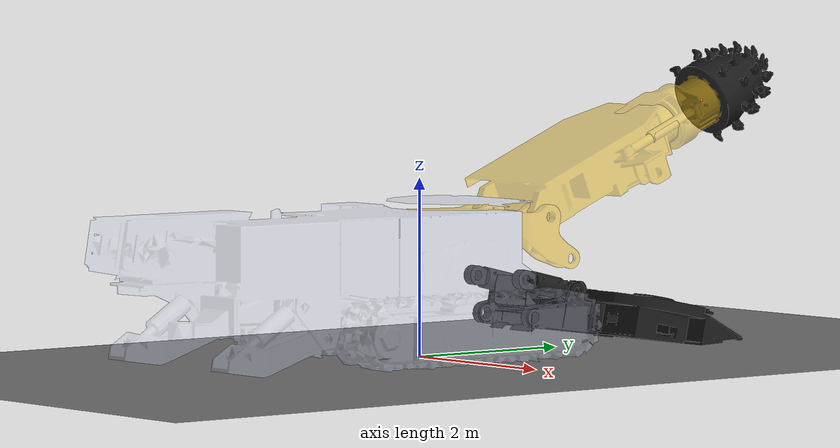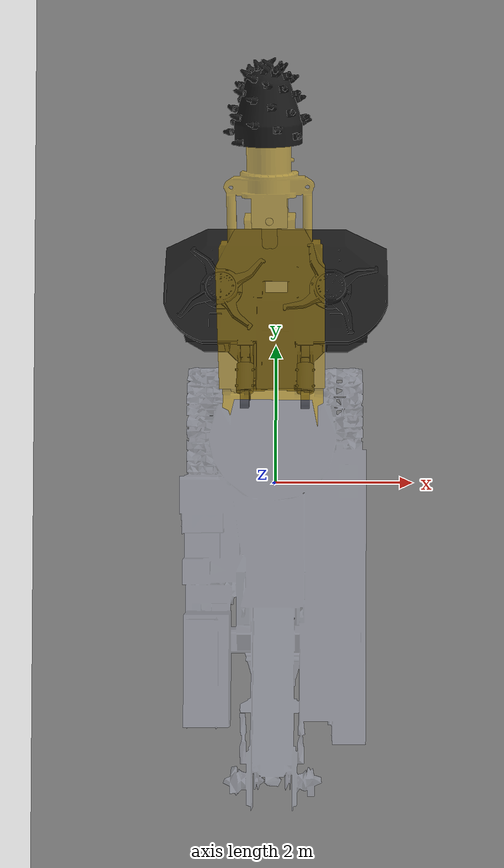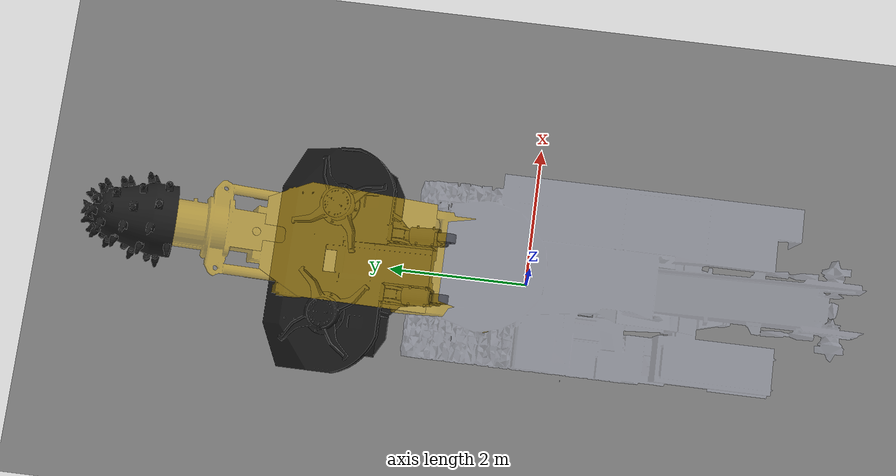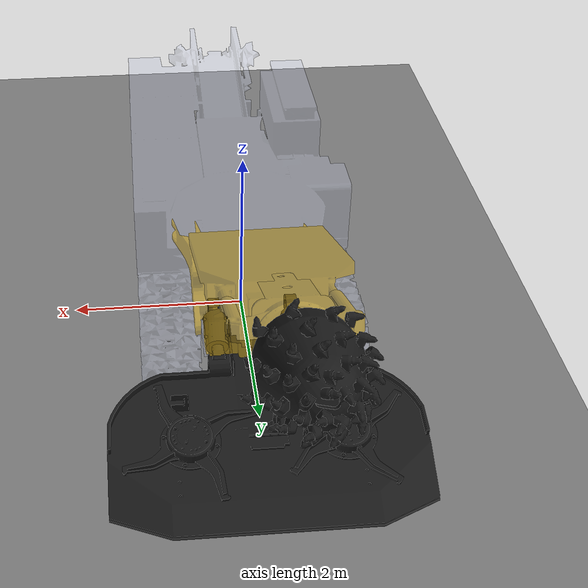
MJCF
<mujoco model="roadheader_ebz260">
  <compiler angle="degree" meshdir="../../meshes/"/>
  <size memory="1024M"/>
  <option timestep="0.001" gravity="0 0 -9.81" integrator="implicitfast"/>

  <asset>
    <texture type="skybox" file="../../asset/desert.png" gridsize="3 4" gridlayout=".U..LFRB.D.." />
    <texture name="plane" type="2d" builtin="checker" rgb1=".1 .1 .1" rgb2=".9 .9 .9" width="512" height="512" mark="cross" markrgb=".8 .8 .8" />
    <material name="plane" reflectance="0.3" texture="plane" texrepeat="1 1" texuniform="true" />
    <!-- 定义新的颜色材质 -->
    <!-- 黑色部件：用于截割头、履带、铲板 -->
    <material name="black_metal" rgba="0.1 0.1 0.1 1" specular="0.5" shininess="0.5"/>
    <!-- 工程黄：用于机身主体 -->
    <material name="engineering_yellow" rgba="0.95 0.75 0.1 0.5" specular="0.3" shininess="0.3"/>
    <!-- 银灰色：用于液压杆、活塞等 -->
    <material name="silver_metal" rgba="0.7 0.7 0.7 0.5" specular="0.8" shininess="0.8"/>
    <!-- 深灰色：用于机械臂连接处等 -->
    <material name="dark_grey" rgba="0.3 0.3 0.3 1" specular="0.3" shininess="0.3"/>
    <!-- 机器人主体颜色，半透明 -->
    <material name="robot_color" rgba="0.792 0.820 0.933 0.3" specular="0.1" shininess="0.1"/>

    <mesh name="base_link" file="base_link.STL" />
    <mesh name="huizhuan_link" file="huizhuan_link.STL" />
    <mesh name="updown_link" file="updown_link.STL" />
    <mesh name="front_back_link" file="front_back_link.STL" />
    <mesh name="jiegetou_link" file="jiegetou_link.STL" />
    <mesh name="chanban_link" file="chanban_link.STL" />
    <mesh name="chanban_huosai_link" file="chanban_huosai_link.STL" />
    <mesh name="chanban_benti_link" file="chanban_benti_link.STL" />
    <mesh name="xinglunpan_link_left" file="xinglunpan_link_left.STL" />
    <mesh name="xinglunpan_link_right" file="xinglunpan_link_right.STL" />

  </asset>

  <worldbody>
    <geom name="floor" pos="0 0 0" size="0 0 .25" type="plane" material="plane" condim="3"/>
    <light directional="true" ambient=".3 .3 .3" pos="30 30 30" dir="0 -.5 -1" diffuse=".5 .5 .5" specular=".5 .5 .5" />

     <!-- 掘进机身 -->
    <body name="base_link" pos="0 0 0">
      <inertial pos="-0.187004885484347 -1.18837705660836 0.784619484517979" mass="40000" fullinertia="7012.61198109 1920.71944043 7212.17347859 -2.61899553366 21.3482425074 437.695624919" />
      <geom type="mesh" mesh="base_link" material="robot_color" contype="0" conaffinity="0" />

      <!-- 回转台，控制左右摆动 -->
      <body name="huizhuan_link" pos="0 0.609936943594532 1.50741733901494">
        <inertial pos="-0.0045156685034452 0.389928394422336 -0.0735723638961974" mass="2220" fullinertia="356.141485125 563.767365492 829.6908744 -2.43863060746 -0.734322985633 63.2034851008" />
        <joint name="huizhuan_joint" pos="0 0 0" axis="0 0 1" type="hinge" limited="true" range="-38 36" damping="500000" armature="100" />
        <geom type="mesh" mesh="huizhuan_link" material="engineering_yellow" contype="0" conaffinity="0" />

        <!-- 截割臂，控制上下摆动 -->
        <body name="updown_link" pos="-0.479702969466105 0.7444636062867 0.0330000000000785">
          <inertial pos="0.490020294909422 0.961034126223478 0.414972639266358" mass="8000" fullinertia="1036.23408667 803.819017616 1261.89058625 -34.289692423 -33.336186676 -218.770789971" />
          <joint name="updown_joint" pos="0 0 0" axis="-0.99993217660885 -0.011646552377767 0" type="hinge" limited="true" range="-40 45" damping="2000000" />
          <geom type="mesh" mesh="updown_link" material="engineering_yellow" contype="0" conaffinity="0" />

          <!-- 截割伸缩部，控制前后伸缩 -->
          <body name="front_back_link" pos="-0.033139 1.9866 0.94833">
            <inertial pos="0.470968875236498 0.626894171795733 0.190410120123621" mass="800" fullinertia="47.3553039693 44.210546925 50.9898135171 0.0494901919436 -0.12924877518 -3.3369332106" />
            <joint name="front_back_joint" pos="0 0 0" axis="0.010758 -0.92367 -0.38303" type="slide" limited="true" range="-0.34 0.3" damping="10000"/>
            <geom type="mesh" mesh="front_back_link" material="engineering_yellow" contype="0" conaffinity="0" />

            <!-- 截割头，旋转切割 -->
            <body name="jiegetou_link" pos="0.46938462258532 0.914194374969433 0.252284999266074">
              <site name="cutter_tip" pos="0 0 0" size="0.02" rgba="1 0 0 1"/>
              <inertial pos="-0.00429994447681969 0.334730266430001 0.138941698694205" mass="2410" fullinertia="197.092104668 168.287613744 192.137698719 0.334580205079 0.140374772092 -11.9442095725" />
              <joint name="jiegetou_joint" pos="0 0 0" axis="-0.0107583457090147 0.923673864384503 0.383028524069167" type="hinge" limited="false"/>
              <geom type="mesh" mesh="jiegetou_link" material="black_metal" contype="1" conaffinity="1" condim="3" friction="0.8 0.005 0.0001" />
            </body>
          </body>
        </body>
      </body>

      <!-- 铲板机构 -->
      <body name="chanban_link" pos="-0.41899999999998 1.14993694359281 0.835286561443913">
        <inertial pos="0.421999999976831 0.244667533077565 -0.0575007260342454" mass="175" fullinertia="5.71214742411 1.62840738358 5.38910508517 -3.43146296503e-09 -1.27841025789e-08 0.936963383099" />
        <joint name="chanban_joint" pos="0 0 0" axis="-1 0 0" type="hinge" limited="true" range="-15 15"/>
        <geom type="mesh" mesh="chanban_link" material="black_metal" contype="0" conaffinity="0" />

        <body name="chanban_huosai_link" pos="0 0.339672954967903 -0.0801453907805885">
          <inertial pos="0.422 0.236593265908223 -0.0558238725655861" mass="175" fullinertia="4.67036972958 0.802869244218 4.24805374965 1.01569728199e-14 5.76544785405e-14 0.860809600256" />
          <joint name="chanban_huosai_joint" pos="0 0 0" axis="0 -0.97327494260144 0.229642953526041" type="slide" limited="true" range="-0.18 0.08"/>
          <geom type="mesh" mesh="chanban_huosai_link" material="black_metal" contype="0" conaffinity="0"/>

          <body name="chanban_benti_link" pos="0 0.378768474922782 -0.0893699277319111">
            <inertial pos="0.41833751220593 0.721211102001956 -0.352140461186548" mass="6000" fullinertia="1336.71958311 592.990751166 1761.23104041 80.6620756608 1.73990517542 189.296115578" />
            <joint name="chanban_benti_joint" pos="0 0 0" axis="1 0 0" type="hinge" limited="true" range="-15 15" />
            <geom type="mesh" mesh="chanban_benti_link" material="black_metal" contype="1" conaffinity="1" condim="3" friction="0.7 0.005 0.0001" />

            <body name="xinglunpan_link_left" pos="-0.358000000000011 0.897774564291463 -0.224779517992865">
              <inertial pos="-1.80366832580603E-12 0.0130100641003494 0.0601799032548234" mass="100" fullinertia="1.64844264078 1.72431326231 3.14516089405 4.1107759071e-05 -8.87644675471e-06 0.322227356975" />
              <joint name="xinglunpan_joint_left" pos="0 0 0" axis="0 -0.211304768939857 -0.977420224173448" type="hinge" limited="false" />
              <geom type="mesh" mesh="xinglunpan_link_left" material="black_metal" contype="0" conaffinity="0" />
            </body>

            <body name="xinglunpan_link_right" pos="1.20199999999999 0.897774564291463 -0.224779517992883">
              <inertial pos="-6.41790370847772E-10 0.0130100642672515 0.0601799032174734" mass="100" fullinertia="1.65001336759 1.7228140028 3.14509215946 0.00263784345715 -0.000570344250235 0.322551695233" />
              <joint name="xinglunpan_joint_right" pos="0 0 0" axis="0 -0.211304768939858 -0.977420224173448" type="hinge" limited="false" />
              <geom type="mesh" mesh="xinglunpan_link_right" material="black_metal" contype="0" conaffinity="0" />
            </body>
          </body>
        </body>
      </body>
    </body>
  </worldbody>

  <actuator>
    <position name="act_left_right" joint="huizhuan_joint"
              kp="2000000" kv="200000" ctrlrange="-1.00 1.00" ctrllimited="true"/>

    <position name="act_up_down" joint="updown_joint"
              kp="10000000" kv="800000" ctrlrange="-1.00 1.00" ctrllimited="true" />

    <position name="act_front_back" joint="front_back_joint"
              kp="2000000" kv="100000" ctrlrange="-1.00 1.00" ctrllimited="true"/>

    <position name="act_shovel" joint="chanban_huosai_joint"
              kp="50000000" kv="10000000" ctrlrange="-1.00 1.00" ctrllimited="true"/>

    <velocity name="act_cutter_spin" joint="jiegetou_joint" kv="500" ctrlrange="-20 20" ctrllimited="true"/>
    <velocity name="act_star_left" joint="xinglunpan_joint_left" kv="200" ctrlrange="-10 10" ctrllimited="true"/>
    <velocity name="act_star_right" joint="xinglunpan_joint_right" kv="200" ctrlrange="-10 10" ctrllimited="true"/>
  </actuator>

  <!-- 解决凸包问题 -->
  <contact>
    <exclude body1="base_link" body2="chanban_benti_link"/>
    <exclude body1="jiegetou_link" body2="chanban_benti_link"/>
    <exclude body1="jiegetou_link" body2="base_link"/>
  </contact>

  <sensor>
    <framepos name="sensor_cutter_pos" objtype="site" objname="cutter_tip"/>
    <framelinvel name="sensor_cutter_vel" objtype="site" objname="cutter_tip"/>
  </sensor>

</mujoco>
